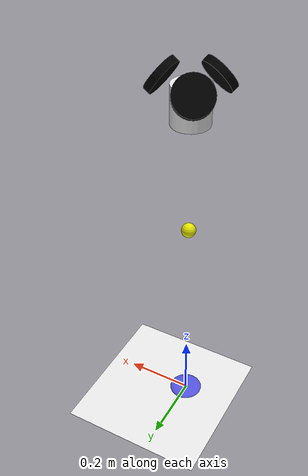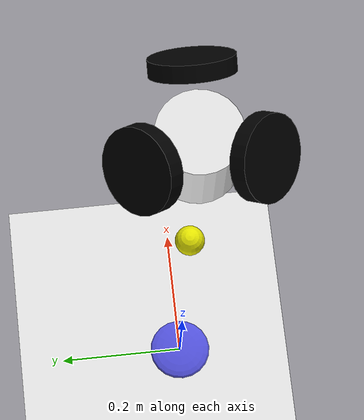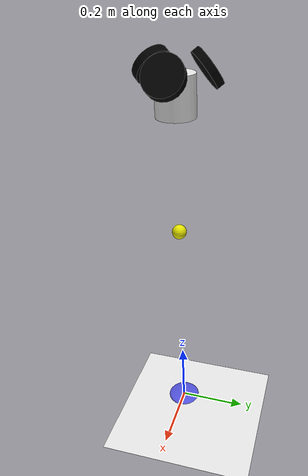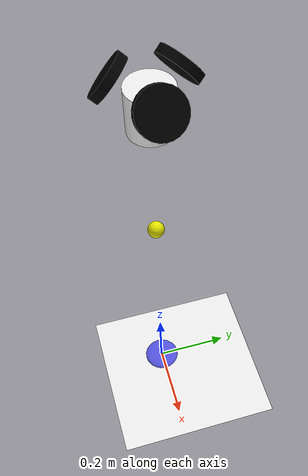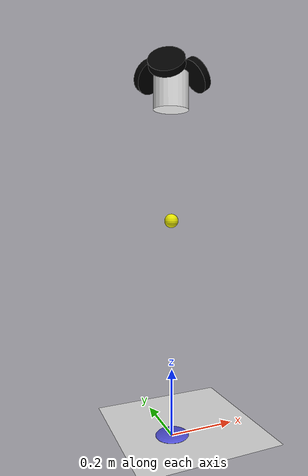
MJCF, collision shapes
<mujoco model="3D_hopper">
    <compiler angle='radian' eulerseq='xyz' meshdir='STLs' discardvisual = "false"/>

    <visual>
        <headlight ambient="0.5 0.5 0.5"/>
    </visual>

    <option timestep="0.001" integrator="RK4" gravity="0 0 -9.81" o_solimp = "0.99 0.999 0.001 0.5 2" o_solref = "0.002 1"/>

    <asset>
        <mesh name='torso'  scale='0.001 0.001 0.001' file='torso_reduced.stl'/>
        <mesh name='wheel'  scale='0.001 0.001 0.001' file='wheel_reduced.stl'/>
        <mesh name='foot'   scale='0.001 0.001 0.001' file='foot.stl'/>
        <texture type='skybox' builtin='gradient' width='128' height='128' rgb1='0.4 0.6 0.8' rgb2='0 0 0'/>
        <texture name='plane' type='2d' builtin='checker' rgb1='0.9 0.9 0.9' rgb2='0.7 0.7 0.7' width='512' height='512'/>
        <material name='plane' reflectance='0.0' texture='plane' texrepeat='1 1' texuniform='true'/>
    </asset>

    <worldbody>
        <geom name="plane" type="plane"  material='plane' size="10 5 0.1" rgba=".9 .9 .9 1"/>

    <camera mode="fixed"/>
        <body name="torso" pos="0 0 1">
            <!--light diffuse=".1 .1 .1" pos="0 0 5" dir="0 0 -1" mode="trackcom" cutoff="90"/-->
            <site name="torso_IMU" type = "sphere" size = ".03" pos= "0 0 0" rgba = ".9 0 0 1"/>
            <geom type="cylinder" size=".05 .05" rgba=".9 .9 .9 1" />
            <geom name ="torso_stl" type='mesh' mesh='torso' contype="0" conaffinity="0" rgba = "0.18 0.18 0.18 0.8" pos="-0.055     0.183     -0.26" xyaxes="1 -0.55 0 0 0 1" />
            <inertial pos =" 0.00 0.00 0" mass = "4.55" diaginertia ="0.04131 0.04093 0.02210"/>
            <freejoint name="root"/>

            <body name="wheel1" pos ="0.0776 0 0.0547" zaxis="0.0776 0 0.0547">
                <geom type="cylinder" size=".05 .01" rgba="0 0 0 0"/>
                <geom name="wheel1_stl" type='mesh' mesh='wheel' contype="0" conaffinity="0" pos="-0.065     -0.065     -0.013  " rgba = "0.937 .39 0 1"/>
                <inertial pos =" 0 0 0" mass = "0.32" diaginertia ="0.00056 0.00056 0.00111"/>
                <joint name="joint_wheel1" type="hinge" pos="0 0 0" axis="0 0 1" />
            </body>

            <body name="wheel2" pos ="-0.0388 0.0672 0.0548" zaxis="-0.0388 0.0672 0.0548" >
                <geom type="cylinder" size=".05 .01" rgba="0 0 0 0"/>
                <geom name="wheel2_stl" type='mesh' mesh='wheel' contype="0" conaffinity="0" pos="-0.065     -0.065     -0.013" rgba = "0.937 .39 0 1"/>
                <inertial pos =" 0 0 0" mass = "0.32" diaginertia ="0.00056 0.00056 0.00111"/>
                <joint name="joint_wheel2" type="hinge" pos="0 0 0" axis="0 0 1" />
            </body>

            <body name="wheel3" pos ="-0.0388 -0.0672 0.0548" zaxis="-0.0388 -0.0672 0.0548">
                <geom type="cylinder" size=".05 .01" rgba="0 0 0 0"/>
                <geom name="wheel3_stl" type='mesh' mesh='wheel' contype="0" conaffinity="0" pos= "-0.065     -0.065     -0.013 " rgba = "0.937 .39 0 1" />
                <inertial pos =" 0 0 0" mass = "0.32" diaginertia ="0.00056 0.00056 0.00111"/>
                <joint name="joint_wheel3" type="hinge" pos="0 0 0" axis="0 0 1" />
            </body>

            <body name="foot" pos="0 0 -0.36">
                <geom type="sphere" size="0.02" rgba=".9 .9 0 0"/>
                <geom name="foot_stl" type='mesh' mesh='foot'  contype="0" conaffinity="0" rgba=".9 .9 .9 1"  pos="-0.023     0.05     -0.013" xyaxes="1 -0.5 0 0 0 1"/>
                <inertial pos =" 0 0 0" mass = "0.4" diaginertia ="0.00165 0.00161 0.00032"/>
                <joint name="knee" type="slide" pos="0 0 0.25" axis="0 0 1" limited = "true" range ="0.0 0.1" solimplimit = "0.99 0.999 0.001 0.5 2" solreflimit=" 0.002 1"  />
            </body>

            <!-- This is to check quat_act-->

        </body>

        <body name="target" pos="0 0 0" >
		<geom type="ellipsoid" size=".05 .05 .01" contype="0" conaffinity="0" rgba = "0.3176    0.3176    0.8588  1.00"/>
		<joint type="slide" axis = "1 0 0"/>
		<joint type="slide" axis = "0 1 0"/>
	</body>

    </worldbody>
    <actuator>
        <position name="position_actuator" joint = "knee" kp ="11732" forcelimited="true" forcerange = "-250000 250000"/>
        <motor name="wheel1_actuator" joint = "joint_wheel1" ctrlrange = "-2.1 2.1" ctrllimited="true"/>
        <motor name="wheel2_actuator" joint = "joint_wheel2" ctrlrange = "-2.1 2.1" ctrllimited="true"/>
        <motor name="wheel3_actuator" joint = "joint_wheel3" ctrlrange = "-2.1 2.1" ctrllimited="true"/>
    </actuator>
</mujoco>
